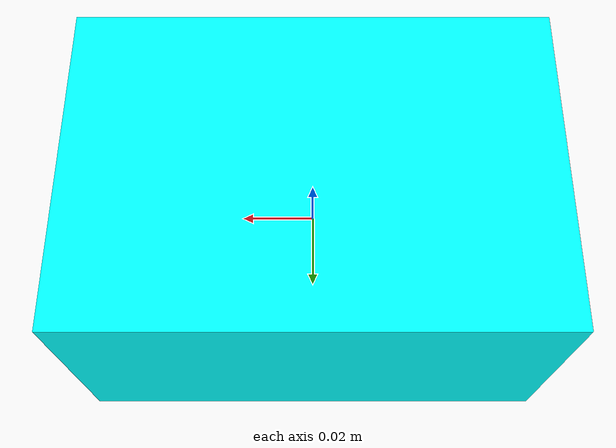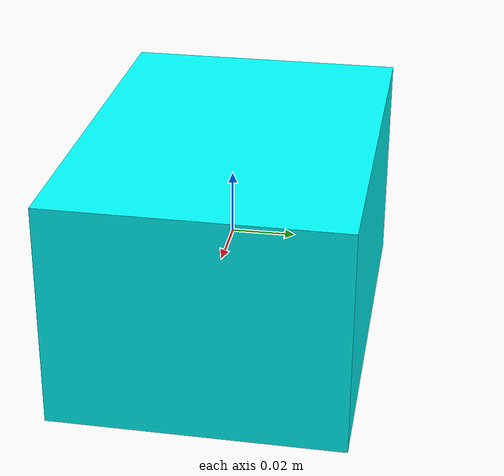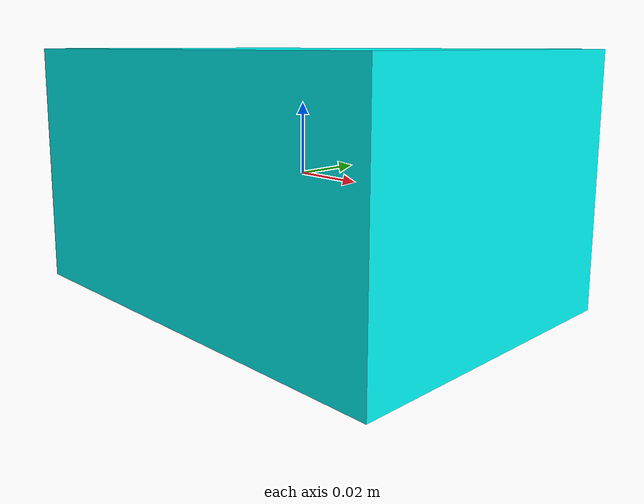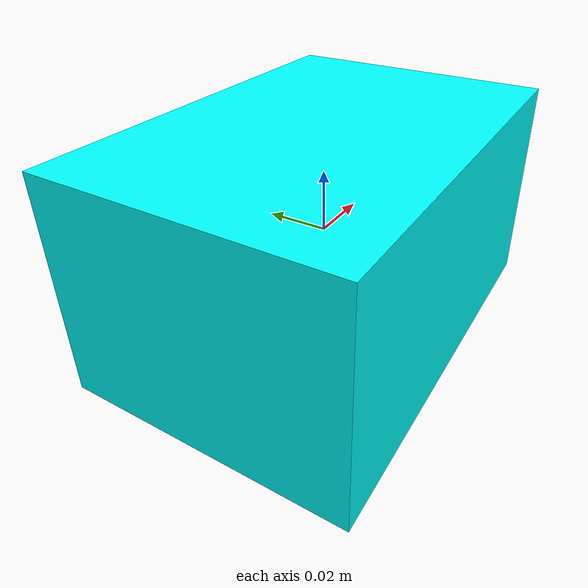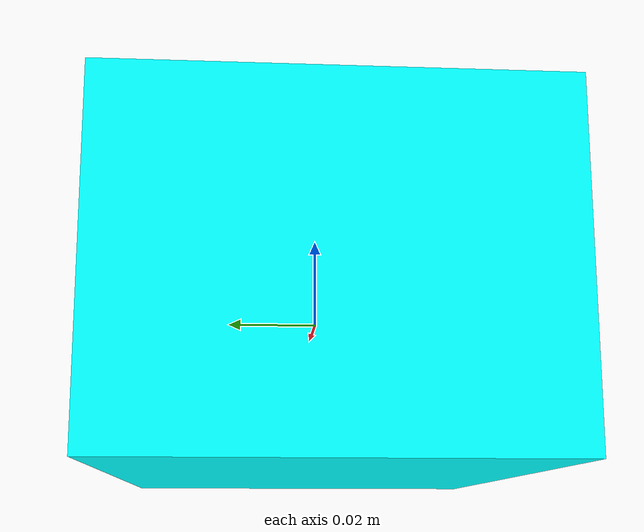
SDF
<?xml version="1.0"?>
<sdf version="1.7">
  <model name="box">
    <link name="box">
      <inertial>
        <mass>1</mass>
        <!-- Inertia values were calculated to be consistent with the mass and
             geometry size, assuming a uniform density. -->
        <inertia>
          <ixx>0.001083</ixx>
          <ixy>0</ixy>
          <ixz>0</ixz>
          <iyy>0.001817</iyy>
          <iyz>0</iyz>
          <izz>0.002083</izz>
        </inertia>
      </inertial>
      <visual name="box">
        <geometry>
          <box>
            <size>0.13 0.09 0.07</size>
          </box>
        </geometry>
        <material>
            <diffuse>0 1 1 1</diffuse>
        </material>
      </visual>
      <collision name="volume">
            <geometry>
          <box>
            <size>0.13 0.09 0.07</size>
          </box>
        </geometry>
        <drake:proximity_properties>
          <drake:compliant_hydroelastic/>
          <drake:hydroelastic_modulus> 3.0e7 </drake:hydroelastic_modulus>
          <drake:mesh_resolution_hint> 0.18 </drake:mesh_resolution_hint>
          <drake:hunt_crossley_dissipation>10</drake:hunt_crossley_dissipation>
          <drake:mu_dynamic>0.3</drake:mu_dynamic>
        </drake:proximity_properties>
      </collision>
    </link>

  </model>
</sdf>
